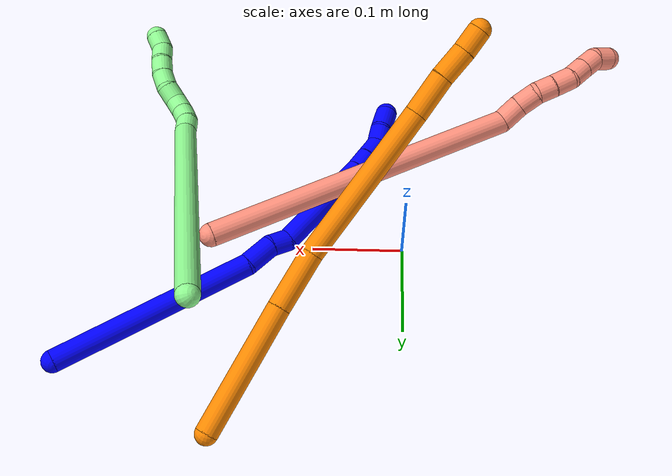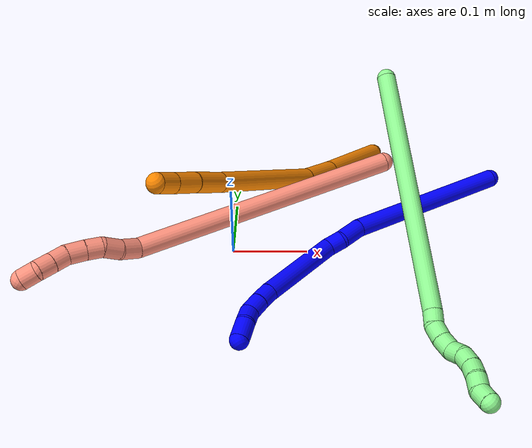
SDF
<sdf version="1.7">
 <world name="default">
  <model name="1">
   <static>0</static>
   <link name="1">
    <collision name="collision-cylinder-e_1_1_4">
     <pose>0.021679 -0.112838 -6.3e-05 1.57135 0.189811 0.189916</pose>
     <geometry><cylinder><radius>0.0125</radius><length>0.229803</length></cylinder></geometry>
     <surface>
      <friction><ode><mu>1.16</mu><mu2>1.16</mu2><slip1>0</slip1><slip2>0</slip2></ode></friction>
      <contact><ode><kp>1e+06</kp><kd>1</kd><max_vel>0</max_vel><min_depth>0.001</min_depth></ode></contact>
     </surface>
    </collision>
    <visual name="visual-cylinder-e_1_1_4">
     <pose>0.021679 -0.112838 -6.3e-05 1.57135 0.189811 0.189916</pose>
     <geometry><cylinder><radius>0.0125</radius><length>0.229803</length></cylinder></geometry>
     <material><ambient>0 0 1 1</ambient></material>
    </visual>
    <collision name="collision-cylinder-e_2_4_5">
     <pose>0.044781 -0.242319 0.003903 1.33334 0.08292 0.065259</pose>
     <geometry><cylinder><radius>0.0125</radius><length>0.034367</length></cylinder></geometry>
     <surface>
      <friction><ode><mu>1.16</mu><mu2>1.16</mu2><slip1>0</slip1><slip2>0</slip2></ode></friction>
      <contact><ode><kp>1e+06</kp><kd>1</kd><max_vel>0</max_vel><min_depth>0.001</min_depth></ode></contact>
     </surface>
    </collision>
    <visual name="visual-cylinder-e_2_4_5">
     <pose>0.044781 -0.242319 0.003903 1.33334 0.08292 0.065259</pose>
     <geometry><cylinder><radius>0.0125</radius><length>0.034367</length></cylinder></geometry>
     <material><ambient>0 0 1 1</ambient></material>
    </visual>
    <collision name="collision-cylinder-e_3_5_6">
     <pose>0.050586 -0.269112 0.008898 1.47577 0.405955 0.369977</pose>
     <geometry><cylinder><radius>0.0125</radius><length>0.022193</length></cylinder></geometry>
     <surface>
      <friction><ode><mu>1.16</mu><mu2>1.16</mu2><slip1>0</slip1><slip2>0</slip2></ode></friction>
      <contact><ode><kp>1e+06</kp><kd>1</kd><max_vel>0</max_vel><min_depth>0.001</min_depth></ode></contact>
     </surface>
    </collision>
    <visual name="visual-cylinder-e_3_5_6">
     <pose>0.050586 -0.269112 0.008898 1.47577 0.405955 0.369977</pose>
     <geometry><cylinder><radius>0.0125</radius><length>0.022193</length></cylinder></geometry>
     <material><ambient>0 0 1 1</ambient></material>
    </visual>
    <collision name="collision-cylinder-e_4_6_7">
     <pose>0.054472 -0.337641 0.027126 1.28334 -0.008139 -0.006081</pose>
     <geometry><cylinder><radius>0.0125</radius><length>0.121761</length></cylinder></geometry>
     <surface>
      <friction><ode><mu>1.16</mu><mu2>1.16</mu2><slip1>0</slip1><slip2>0</slip2></ode></friction>
      <contact><ode><kp>1e+06</kp><kd>1</kd><max_vel>0</max_vel><min_depth>0.001</min_depth></ode></contact>
     </surface>
    </collision>
    <visual name="visual-cylinder-e_4_6_7">
     <pose>0.054472 -0.337641 0.027126 1.28334 -0.008139 -0.006081</pose>
     <geometry><cylinder><radius>0.0125</radius><length>0.121761</length></cylinder></geometry>
     <material><ambient>0 0 1 1</ambient></material>
    </visual>
    <collision name="collision-cylinder-e_5_7_8">
     <pose>0.05374 -0.405962 0.048427 1.18461 -0.022061 -0.014845</pose>
     <geometry><cylinder><radius>0.0125</radius><length>0.021467</length></cylinder></geometry>
     <surface>
      <friction><ode><mu>1.16</mu><mu2>1.16</mu2><slip1>0</slip1><slip2>0</slip2></ode></friction>
      <contact><ode><kp>1e+06</kp><kd>1</kd><max_vel>0</max_vel><min_depth>0.001</min_depth></ode></contact>
     </surface>
    </collision>
    <visual name="visual-cylinder-e_5_7_8">
     <pose>0.05374 -0.405962 0.048427 1.18461 -0.022061 -0.014845</pose>
     <geometry><cylinder><radius>0.0125</radius><length>0.021467</length></cylinder></geometry>
     <material><ambient>0 0 1 1</ambient></material>
    </visual>
    <collision name="collision-cylinder-e_6_8_9">
     <pose>0.053762 -0.425925 0.057127 1.13572 0.023359 0.014902</pose>
     <geometry><cylinder><radius>0.0125</radius><length>0.022111</length></cylinder></geometry>
     <surface>
      <friction><ode><mu>1.16</mu><mu2>1.16</mu2><slip1>0</slip1><slip2>0</slip2></ode></friction>
      <contact><ode><kp>1e+06</kp><kd>1</kd><max_vel>0</max_vel><min_depth>0.001</min_depth></ode></contact>
     </surface>
    </collision>
    <visual name="visual-cylinder-e_6_8_9">
     <pose>0.053762 -0.425925 0.057127 1.13572 0.023359 0.014902</pose>
     <geometry><cylinder><radius>0.0125</radius><length>0.022111</length></cylinder></geometry>
     <material><ambient>0 0 1 1</ambient></material>
    </visual>
    <collision name="collision-cylinder-e_7_9_10">
     <pose>0.050789 -0.443834 0.068053 0.899263 -0.31035 -0.150703</pose>
     <geometry><cylinder><radius>0.0125</radius><length>0.021156</length></cylinder></geometry>
     <surface>
      <friction><ode><mu>1.16</mu><mu2>1.16</mu2><slip1>0</slip1><slip2>0</slip2></ode></friction>
      <contact><ode><kp>1e+06</kp><kd>1</kd><max_vel>0</max_vel><min_depth>0.001</min_depth></ode></contact>
     </surface>
    </collision>
    <visual name="visual-cylinder-e_7_9_10">
     <pose>0.050789 -0.443834 0.068053 0.899263 -0.31035 -0.150703</pose>
     <geometry><cylinder><radius>0.0125</radius><length>0.021156</length></cylinder></geometry>
     <material><ambient>0 0 1 1</ambient></material>
    </visual>
    <collision name="collision-cylinder-e_8_10_2">
     <pose>0.046684 -0.461536 0.08365 0.810818 -0.064497 -0.027689</pose>
     <geometry><cylinder><radius>0.0125</radius><length>0.027142</length></cylinder></geometry>
     <surface>
      <friction><ode><mu>1.16</mu><mu2>1.16</mu2><slip1>0</slip1><slip2>0</slip2></ode></friction>
      <contact><ode><kp>1e+06</kp><kd>1</kd><max_vel>0</max_vel><min_depth>0.001</min_depth></ode></contact>
     </surface>
    </collision>
    <visual name="visual-cylinder-e_8_10_2">
     <pose>0.046684 -0.461536 0.08365 0.810818 -0.064497 -0.027689</pose>
     <geometry><cylinder><radius>0.0125</radius><length>0.027142</length></cylinder></geometry>
     <material><ambient>0 0 1 1</ambient></material>
    </visual>
    <collision name="collision-sphere-2">
     <pose>0.045809 -0.471353 0.09298 0 -0 0</pose>
     <geometry><sphere><radius>0.0125</radius></sphere></geometry>
     <surface>
      <friction><ode><mu>1.16</mu><mu2>1.16</mu2><slip1>0</slip1><slip2>0</slip2></ode></friction>
      <contact><ode><kp>1e+06</kp><kd>1</kd><max_vel>0</max_vel><min_depth>0.001</min_depth></ode></contact>
     </surface>
    </collision>
    <visual name="visual-sphere-2">
     <pose>0.045809 -0.471353 0.09298 0 -0 0</pose>
     <geometry><sphere><radius>0.0125</radius></sphere></geometry>
     <material><ambient>0 0 1 1</ambient></material>
    </visual>
    <collision name="collision-sphere-10">
     <pose>0.047559 -0.451719 0.07432 0 -0 0</pose>
     <geometry><sphere><radius>0.0125</radius></sphere></geometry>
     <surface>
      <friction><ode><mu>1.16</mu><mu2>1.16</mu2><slip1>0</slip1><slip2>0</slip2></ode></friction>
      <contact><ode><kp>1e+06</kp><kd>1</kd><max_vel>0</max_vel><min_depth>0.001</min_depth></ode></contact>
     </surface>
    </collision>
    <visual name="visual-sphere-10">
     <pose>0.047559 -0.451719 0.07432 0 -0 0</pose>
     <geometry><sphere><radius>0.0125</radius></sphere></geometry>
     <material><ambient>0 0 1 1</ambient></material>
    </visual>
    <collision name="collision-sphere-9">
     <pose>0.05402 -0.435948 0.061786 0 -0 0</pose>
     <geometry><sphere><radius>0.0125</radius></sphere></geometry>
     <surface>
      <friction><ode><mu>1.16</mu><mu2>1.16</mu2><slip1>0</slip1><slip2>0</slip2></ode></friction>
      <contact><ode><kp>1e+06</kp><kd>1</kd><max_vel>0</max_vel><min_depth>0.001</min_depth></ode></contact>
     </surface>
    </collision>
    <visual name="visual-sphere-9">
     <pose>0.05402 -0.435948 0.061786 0 -0 0</pose>
     <geometry><sphere><radius>0.0125</radius></sphere></geometry>
     <material><ambient>0 0 1 1</ambient></material>
    </visual>
    <collision name="collision-sphere-4">
     <pose>0.043358 -0.225676 -0.000125 0 -0 0</pose>
     <geometry><sphere><radius>0.0125</radius></sphere></geometry>
     <surface>
      <friction><ode><mu>1.16</mu><mu2>1.16</mu2><slip1>0</slip1><slip2>0</slip2></ode></friction>
      <contact><ode><kp>1e+06</kp><kd>1</kd><max_vel>0</max_vel><min_depth>0.001</min_depth></ode></contact>
     </surface>
    </collision>
    <visual name="visual-sphere-4">
     <pose>0.043358 -0.225676 -0.000125 0 -0 0</pose>
     <geometry><sphere><radius>0.0125</radius></sphere></geometry>
     <material><ambient>0 0 1 1</ambient></material>
    </visual>
    <collision name="collision-sphere-1">
     <geometry><sphere><radius>0.0125</radius></sphere></geometry>
     <surface>
      <friction><ode><mu>1.16</mu><mu2>1.16</mu2><slip1>0</slip1><slip2>0</slip2></ode></friction>
      <contact><ode><kp>1e+06</kp><kd>1</kd><max_vel>0</max_vel><min_depth>0.001</min_depth></ode></contact>
     </surface>
    </collision>
    <visual name="visual-sphere-1">
     <geometry><sphere><radius>0.0125</radius></sphere></geometry>
     <material><ambient>0 0 1 1</ambient></material>
    </visual>
    <collision name="collision-sphere-8">
     <pose>0.053503 -0.415902 0.052469 0 -0 0</pose>
     <geometry><sphere><radius>0.0125</radius></sphere></geometry>
     <surface>
      <friction><ode><mu>1.16</mu><mu2>1.16</mu2><slip1>0</slip1><slip2>0</slip2></ode></friction>
      <contact><ode><kp>1e+06</kp><kd>1</kd><max_vel>0</max_vel><min_depth>0.001</min_depth></ode></contact>
     </surface>
    </collision>
    <visual name="visual-sphere-8">
     <pose>0.053503 -0.415902 0.052469 0 -0 0</pose>
     <geometry><sphere><radius>0.0125</radius></sphere></geometry>
     <material><ambient>0 0 1 1</ambient></material>
    </visual>
    <collision name="collision-sphere-5">
     <pose>0.046204 -0.258963 0.007931 0 -0 0</pose>
     <geometry><sphere><radius>0.0125</radius></sphere></geometry>
     <surface>
      <friction><ode><mu>1.16</mu><mu2>1.16</mu2><slip1>0</slip1><slip2>0</slip2></ode></friction>
      <contact><ode><kp>1e+06</kp><kd>1</kd><max_vel>0</max_vel><min_depth>0.001</min_depth></ode></contact>
     </surface>
    </collision>
    <visual name="visual-sphere-5">
     <pose>0.046204 -0.258963 0.007931 0 -0 0</pose>
     <geometry><sphere><radius>0.0125</radius></sphere></geometry>
     <material><ambient>0 0 1 1</ambient></material>
    </visual>
    <collision name="collision-sphere-6">
     <pose>0.054968 -0.27926 0.009866 0 -0 0</pose>
     <geometry><sphere><radius>0.0125</radius></sphere></geometry>
     <surface>
      <friction><ode><mu>1.16</mu><mu2>1.16</mu2><slip1>0</slip1><slip2>0</slip2></ode></friction>
      <contact><ode><kp>1e+06</kp><kd>1</kd><max_vel>0</max_vel><min_depth>0.001</min_depth></ode></contact>
     </surface>
    </collision>
    <visual name="visual-sphere-6">
     <pose>0.054968 -0.27926 0.009866 0 -0 0</pose>
     <geometry><sphere><radius>0.0125</radius></sphere></geometry>
     <material><ambient>0 0 1 1</ambient></material>
    </visual>
    <collision name="collision-sphere-7">
     <pose>0.053977 -0.396021 0.044385 0 -0 0</pose>
     <geometry><sphere><radius>0.0125</radius></sphere></geometry>
     <surface>
      <friction><ode><mu>1.16</mu><mu2>1.16</mu2><slip1>0</slip1><slip2>0</slip2></ode></friction>
      <contact><ode><kp>1e+06</kp><kd>1</kd><max_vel>0</max_vel><min_depth>0.001</min_depth></ode></contact>
     </surface>
    </collision>
    <visual name="visual-sphere-7">
     <pose>0.053977 -0.396021 0.044385 0 -0 0</pose>
     <geometry><sphere><radius>0.0125</radius></sphere></geometry>
     <material><ambient>0 0 1 1</ambient></material>
    </visual>
    <inertial>
     <pose>0.03792 -0.242783 0.019266 0 -0 0</pose>
     <mass>0.5</mass>
     <inertia>
      <ixx>0.001345</ixx>
      <ixy>0</ixy>
      <ixz>0</ixz>
      <iyy>0.000238</iyy>
      <iyz>0</iyz>
      <izz>0.000979</izz>
     </inertia>
    </inertial>
   </link>
   <pose>0.36615 0.15126 0.018551 -2.80856 1.04499 2.50344</pose>
  </model>
  <model name="13">
   <static>0</static>
   <link name="13">
    <collision name="collision-cylinder-e_1_1_4">
     <pose>-0.005382 -0.135787 -0.101993 2.21502 -0.03168 -0.0634</pose>
     <geometry><cylinder><radius>0.0125</radius><length>0.339822</length></cylinder></geometry>
     <surface>
      <friction><ode><mu>1.16</mu><mu2>1.16</mu2><slip1>0</slip1><slip2>0</slip2></ode></friction>
      <contact><ode><kp>1e+06</kp><kd>1</kd><max_vel>0</max_vel><min_depth>0.001</min_depth></ode></contact>
     </surface>
    </collision>
    <visual name="visual-cylinder-e_1_1_4">
     <pose>-0.005382 -0.135787 -0.101993 2.21502 -0.03168 -0.0634</pose>
     <geometry><cylinder><radius>0.0125</radius><length>0.339822</length></cylinder></geometry>
     <material><ambient>0.564706 0.984314 0.572549 1</ambient></material>
    </visual>
    <collision name="collision-cylinder-e_2_4_5">
     <pose>-0.010356 -0.280863 -0.207801 1.96056 0.040602 0.060562</pose>
     <geometry><cylinder><radius>0.0125</radius><length>0.020099</length></cylinder></geometry>
     <surface>
      <friction><ode><mu>1.16</mu><mu2>1.16</mu2><slip1>0</slip1><slip2>0</slip2></ode></friction>
      <contact><ode><kp>1e+06</kp><kd>1</kd><max_vel>0</max_vel><min_depth>0.001</min_depth></ode></contact>
     </surface>
    </collision>
    <visual name="visual-cylinder-e_2_4_5">
     <pose>-0.010356 -0.280863 -0.207801 1.96056 0.040602 0.060562</pose>
     <geometry><cylinder><radius>0.0125</radius><length>0.020099</length></cylinder></geometry>
     <material><ambient>0.564706 0.984314 0.572549 1</ambient></material>
    </visual>
    <collision name="collision-cylinder-e_3_5_6">
     <pose>-0.007004 -0.297577 -0.217637 2.25207 0.298755 0.611716</pose>
     <geometry><cylinder><radius>0.0125</radius><length>0.020004</length></cylinder></geometry>
     <surface>
      <friction><ode><mu>1.16</mu><mu2>1.16</mu2><slip1>0</slip1><slip2>0</slip2></ode></friction>
      <contact><ode><kp>1e+06</kp><kd>1</kd><max_vel>0</max_vel><min_depth>0.001</min_depth></ode></contact>
     </surface>
    </collision>
    <visual name="visual-cylinder-e_3_5_6">
     <pose>-0.007004 -0.297577 -0.217637 2.25207 0.298755 0.611716</pose>
     <geometry><cylinder><radius>0.0125</radius><length>0.020004</length></cylinder></geometry>
     <material><ambient>0.564706 0.984314 0.572549 1</ambient></material>
    </visual>
    <collision name="collision-cylinder-e_4_6_7">
     <pose>0.000676 -0.311855 -0.229222 2.25288 0.492368 0.971236</pose>
     <geometry><cylinder><radius>0.0125</radius><length>0.020037</length></cylinder></geometry>
     <surface>
      <friction><ode><mu>1.16</mu><mu2>1.16</mu2><slip1>0</slip1><slip2>0</slip2></ode></friction>
      <contact><ode><kp>1e+06</kp><kd>1</kd><max_vel>0</max_vel><min_depth>0.001</min_depth></ode></contact>
     </surface>
    </collision>
    <visual name="visual-cylinder-e_4_6_7">
     <pose>0.000676 -0.311855 -0.229222 2.25288 0.492368 0.971236</pose>
     <geometry><cylinder><radius>0.0125</radius><length>0.020037</length></cylinder></geometry>
     <material><ambient>0.564706 0.984314 0.572549 1</ambient></material>
    </visual>
    <collision name="collision-cylinder-e_5_7_8">
     <pose>0.013325 -0.324271 -0.23734 2.00088 0.912553 1.30625</pose>
     <geometry><cylinder><radius>0.0125</radius><length>0.020007</length></cylinder></geometry>
     <surface>
      <friction><ode><mu>1.16</mu><mu2>1.16</mu2><slip1>0</slip1><slip2>0</slip2></ode></friction>
      <contact><ode><kp>1e+06</kp><kd>1</kd><max_vel>0</max_vel><min_depth>0.001</min_depth></ode></contact>
     </surface>
    </collision>
    <visual name="visual-cylinder-e_5_7_8">
     <pose>0.013325 -0.324271 -0.23734 2.00088 0.912553 1.30625</pose>
     <geometry><cylinder><radius>0.0125</radius><length>0.020007</length></cylinder></geometry>
     <material><ambient>0.564706 0.984314 0.572549 1</ambient></material>
    </visual>
    <collision name="collision-cylinder-e_6_8_9">
     <pose>0.026389 -0.337711 -0.243307 1.97991 0.540242 0.79839</pose>
     <geometry><cylinder><radius>0.0125</radius><length>0.020025</length></cylinder></geometry>
     <surface>
      <friction><ode><mu>1.16</mu><mu2>1.16</mu2><slip1>0</slip1><slip2>0</slip2></ode></friction>
      <contact><ode><kp>1e+06</kp><kd>1</kd><max_vel>0</max_vel><min_depth>0.001</min_depth></ode></contact>
     </surface>
    </collision>
    <visual name="visual-cylinder-e_6_8_9">
     <pose>0.026389 -0.337711 -0.243307 1.97991 0.540242 0.79839</pose>
     <geometry><cylinder><radius>0.0125</radius><length>0.020025</length></cylinder></geometry>
     <material><ambient>0.564706 0.984314 0.572549 1</ambient></material>
    </visual>
    <collision name="collision-cylinder-e_7_9_10">
     <pose>0.035134 -0.35467 -0.248868 1.80278 0.367716 0.461634</pose>
     <geometry><cylinder><radius>0.0125</radius><length>0.020001</length></cylinder></geometry>
     <surface>
      <friction><ode><mu>1.16</mu><mu2>1.16</mu2><slip1>0</slip1><slip2>0</slip2></ode></friction>
      <contact><ode><kp>1e+06</kp><kd>1</kd><max_vel>0</max_vel><min_depth>0.001</min_depth></ode></contact>
     </surface>
    </collision>
    <visual name="visual-cylinder-e_7_9_10">
     <pose>0.035134 -0.35467 -0.248868 1.80278 0.367716 0.461634</pose>
     <geometry><cylinder><radius>0.0125</radius><length>0.020001</length></cylinder></geometry>
     <material><ambient>0.564706 0.984314 0.572549 1</ambient></material>
    </visual>
    <collision name="collision-cylinder-e_8_10_11">
     <pose>0.04063 -0.373068 -0.254113 1.89199 0.191305 0.264524</pose>
     <geometry><cylinder><radius>0.0125</radius><length>0.020001</length></cylinder></geometry>
     <surface>
      <friction><ode><mu>1.16</mu><mu2>1.16</mu2><slip1>0</slip1><slip2>0</slip2></ode></friction>
      <contact><ode><kp>1e+06</kp><kd>1</kd><max_vel>0</max_vel><min_depth>0.001</min_depth></ode></contact>
     </surface>
    </collision>
    <visual name="visual-cylinder-e_8_10_11">
     <pose>0.04063 -0.373068 -0.254113 1.89199 0.191305 0.264524</pose>
     <geometry><cylinder><radius>0.0125</radius><length>0.020001</length></cylinder></geometry>
     <material><ambient>0.564706 0.984314 0.572549 1</ambient></material>
    </visual>
    <collision name="collision-cylinder-e_9_11_2">
     <pose>0.048198 -0.389804 -0.2608 2.02121 0.602251 0.919528</pose>
     <geometry><cylinder><radius>0.0125</radius><length>0.020004</length></cylinder></geometry>
     <surface>
      <friction><ode><mu>1.16</mu><mu2>1.16</mu2><slip1>0</slip1><slip2>0</slip2></ode></friction>
      <contact><ode><kp>1e+06</kp><kd>1</kd><max_vel>0</max_vel><min_depth>0.001</min_depth></ode></contact>
     </surface>
    </collision>
    <visual name="visual-cylinder-e_9_11_2">
     <pose>0.048198 -0.389804 -0.2608 2.02121 0.602251 0.919528</pose>
     <geometry><cylinder><radius>0.0125</radius><length>0.020004</length></cylinder></geometry>
     <material><ambient>0.564706 0.984314 0.572549 1</ambient></material>
    </visual>
    <collision name="collision-sphere-2">
     <pose>0.053864 -0.397224 -0.264388 0 -0 0</pose>
     <geometry><sphere><radius>0.0125</radius></sphere></geometry>
     <surface>
      <friction><ode><mu>1.16</mu><mu2>1.16</mu2><slip1>0</slip1><slip2>0</slip2></ode></friction>
      <contact><ode><kp>1e+06</kp><kd>1</kd><max_vel>0</max_vel><min_depth>0.001</min_depth></ode></contact>
     </surface>
    </collision>
    <visual name="visual-sphere-2">
     <pose>0.053864 -0.397224 -0.264388 0 -0 0</pose>
     <geometry><sphere><radius>0.0125</radius></sphere></geometry>
     <material><ambient>0.564706 0.984314 0.572549 1</ambient></material>
    </visual>
    <collision name="collision-sphere-11">
     <pose>0.042532 -0.382384 -0.257212 0 -0 0</pose>
     <geometry><sphere><radius>0.0125</radius></sphere></geometry>
     <surface>
      <friction><ode><mu>1.16</mu><mu2>1.16</mu2><slip1>0</slip1><slip2>0</slip2></ode></friction>
      <contact><ode><kp>1e+06</kp><kd>1</kd><max_vel>0</max_vel><min_depth>0.001</min_depth></ode></contact>
     </surface>
    </collision>
    <visual name="visual-sphere-11">
     <pose>0.042532 -0.382384 -0.257212 0 -0 0</pose>
     <geometry><sphere><radius>0.0125</radius></sphere></geometry>
     <material><ambient>0.564706 0.984314 0.572549 1</ambient></material>
    </visual>
    <collision name="collision-sphere-10">
     <pose>0.038729 -0.363752 -0.251013 0 -0 0</pose>
     <geometry><sphere><radius>0.0125</radius></sphere></geometry>
     <surface>
      <friction><ode><mu>1.16</mu><mu2>1.16</mu2><slip1>0</slip1><slip2>0</slip2></ode></friction>
      <contact><ode><kp>1e+06</kp><kd>1</kd><max_vel>0</max_vel><min_depth>0.001</min_depth></ode></contact>
     </surface>
    </collision>
    <visual name="visual-sphere-10">
     <pose>0.038729 -0.363752 -0.251013 0 -0 0</pose>
     <geometry><sphere><radius>0.0125</radius></sphere></geometry>
     <material><ambient>0.564706 0.984314 0.572549 1</ambient></material>
    </visual>
    <collision name="collision-sphere-9">
     <pose>0.031539 -0.345589 -0.246722 0 -0 0</pose>
     <geometry><sphere><radius>0.0125</radius></sphere></geometry>
     <surface>
      <friction><ode><mu>1.16</mu><mu2>1.16</mu2><slip1>0</slip1><slip2>0</slip2></ode></friction>
      <contact><ode><kp>1e+06</kp><kd>1</kd><max_vel>0</max_vel><min_depth>0.001</min_depth></ode></contact>
     </surface>
    </collision>
    <visual name="visual-sphere-9">
     <pose>0.031539 -0.345589 -0.246722 0 -0 0</pose>
     <geometry><sphere><radius>0.0125</radius></sphere></geometry>
     <material><ambient>0.564706 0.984314 0.572549 1</ambient></material>
    </visual>
    <collision name="collision-sphere-4">
     <pose>-0.010764 -0.271575 -0.203986 0 -0 0</pose>
     <geometry><sphere><radius>0.0125</radius></sphere></geometry>
     <surface>
      <friction><ode><mu>1.16</mu><mu2>1.16</mu2><slip1>0</slip1><slip2>0</slip2></ode></friction>
      <contact><ode><kp>1e+06</kp><kd>1</kd><max_vel>0</max_vel><min_depth>0.001</min_depth></ode></contact>
     </surface>
    </collision>
    <visual name="visual-sphere-4">
     <pose>-0.010764 -0.271575 -0.203986 0 -0 0</pose>
     <geometry><sphere><radius>0.0125</radius></sphere></geometry>
     <material><ambient>0.564706 0.984314 0.572549 1</ambient></material>
    </visual>
    <collision name="collision-sphere-1">
     <geometry><sphere><radius>0.0125</radius></sphere></geometry>
     <surface>
      <friction><ode><mu>1.16</mu><mu2>1.16</mu2><slip1>0</slip1><slip2>0</slip2></ode></friction>
      <contact><ode><kp>1e+06</kp><kd>1</kd><max_vel>0</max_vel><min_depth>0.001</min_depth></ode></contact>
     </surface>
    </collision>
    <visual name="visual-sphere-1">
     <geometry><sphere><radius>0.0125</radius></sphere></geometry>
     <material><ambient>0.564706 0.984314 0.572549 1</ambient></material>
    </visual>
    <collision name="collision-sphere-8">
     <pose>0.021239 -0.329833 -0.239891 0 -0 0</pose>
     <geometry><sphere><radius>0.0125</radius></sphere></geometry>
     <surface>
      <friction><ode><mu>1.16</mu><mu2>1.16</mu2><slip1>0</slip1><slip2>0</slip2></ode></friction>
      <contact><ode><kp>1e+06</kp><kd>1</kd><max_vel>0</max_vel><min_depth>0.001</min_depth></ode></contact>
     </surface>
    </collision>
    <visual name="visual-sphere-8">
     <pose>0.021239 -0.329833 -0.239891 0 -0 0</pose>
     <geometry><sphere><radius>0.0125</radius></sphere></geometry>
     <material><ambient>0.564706 0.984314 0.572549 1</ambient></material>
    </visual>
    <collision name="collision-sphere-5">
     <pose>-0.009948 -0.290151 -0.211617 0 -0 0</pose>
     <geometry><sphere><radius>0.0125</radius></sphere></geometry>
     <surface>
      <friction><ode><mu>1.16</mu><mu2>1.16</mu2><slip1>0</slip1><slip2>0</slip2></ode></friction>
      <contact><ode><kp>1e+06</kp><kd>1</kd><max_vel>0</max_vel><min_depth>0.001</min_depth></ode></contact>
     </surface>
    </collision>
    <visual name="visual-sphere-5">
     <pose>-0.009948 -0.290151 -0.211617 0 -0 0</pose>
     <geometry><sphere><radius>0.0125</radius></sphere></geometry>
     <material><ambient>0.564706 0.984314 0.572549 1</ambient></material>
    </visual>
    <collision name="collision-sphere-6">
     <pose>-0.00406 -0.305002 -0.223657 0 -0 0</pose>
     <geometry><sphere><radius>0.0125</radius></sphere></geometry>
     <surface>
      <friction><ode><mu>1.16</mu><mu2>1.16</mu2><slip1>0</slip1><slip2>0</slip2></ode></friction>
      <contact><ode><kp>1e+06</kp><kd>1</kd><max_vel>0</max_vel><min_depth>0.001</min_depth></ode></contact>
     </surface>
    </collision>
    <visual name="visual-sphere-6">
     <pose>-0.00406 -0.305002 -0.223657 0 -0 0</pose>
     <geometry><sphere><radius>0.0125</radius></sphere></geometry>
     <material><ambient>0.564706 0.984314 0.572549 1</ambient></material>
    </visual>
    <collision name="collision-sphere-7">
     <pose>0.005412 -0.318708 -0.234788 0 -0 0</pose>
     <geometry><sphere><radius>0.0125</radius></sphere></geometry>
     <surface>
      <friction><ode><mu>1.16</mu><mu2>1.16</mu2><slip1>0</slip1><slip2>0</slip2></ode></friction>
      <contact><ode><kp>1e+06</kp><kd>1</kd><max_vel>0</max_vel><min_depth>0.001</min_depth></ode></contact>
     </surface>
    </collision>
    <visual name="visual-sphere-7">
     <pose>0.005412 -0.318708 -0.234788 0 -0 0</pose>
     <geometry><sphere><radius>0.0125</radius></sphere></geometry>
     <material><ambient>0.564706 0.984314 0.572549 1</ambient></material>
    </visual>
    <inertial>
     <pose>0.002222 -0.199187 -0.145361 0 -0 0</pose>
     <mass>0.5</mass>
     <inertia>
      <ixx>0.003085</ixx>
      <ixy>0</ixy>
      <ixz>0</ixz>
      <iyy>-0.002197</iyy>
      <iyz>0</iyz>
      <izz>0.002712</izz>
     </inertia>
    </inertial>
   </link>
   <pose>0.205884 0.155218 0.181232 0.001364 -0.74821 -0.288726</pose>
  </model>
  <model name="16">
   <static>0</static>
   <link name="16">
    <collision name="collision-cylinder-e_1_1_4">
     <pose>-0.105225 -0.049241 -0.128978 2.77689 -0.651252 -2.14186</pose>
     <geometry><cylinder><radius>0.0125</radius><length>0.347173</length></cylinder></geometry>
     <surface>
      <friction><ode><mu>1.16</mu><mu2>1.16</mu2><slip1>0</slip1><slip2>0</slip2></ode></friction>
      <contact><ode><kp>1e+06</kp><kd>1</kd><max_vel>0</max_vel><min_depth>0.001</min_depth></ode></contact>
     </surface>
    </collision>
    <visual name="visual-cylinder-e_1_1_4">
     <pose>-0.105225 -0.049241 -0.128978 2.77689 -0.651252 -2.14186</pose>
     <geometry><cylinder><radius>0.0125</radius><length>0.347173</length></cylinder></geometry>
     <material><ambient>1 0.576471 0.494118 1</ambient></material>
    </visual>
    <collision name="collision-cylinder-e_2_4_5">
     <pose>-0.219041 -0.106423 -0.263378 2.16987 -0.729161 -1.25158</pose>
     <geometry><cylinder><radius>0.0125</radius><length>0.02579</length></cylinder></geometry>
     <surface>
      <friction><ode><mu>1.16</mu><mu2>1.16</mu2><slip1>0</slip1><slip2>0</slip2></ode></friction>
      <contact><ode><kp>1e+06</kp><kd>1</kd><max_vel>0</max_vel><min_depth>0.001</min_depth></ode></contact>
     </surface>
    </collision>
    <visual name="visual-cylinder-e_2_4_5">
     <pose>-0.219041 -0.106423 -0.263378 2.16987 -0.729161 -1.25158</pose>
     <geometry><cylinder><radius>0.0125</radius><length>0.02579</length></cylinder></geometry>
     <material><ambient>1 0.576471 0.494118 1</ambient></material>
    </visual>
    <collision name="collision-cylinder-e_3_5_6">
     <pose>-0.23726 -0.120209 -0.272326 2.11367 -0.954077 -1.48261</pose>
     <geometry><cylinder><radius>0.0125</radius><length>0.023603</length></cylinder></geometry>
     <surface>
      <friction><ode><mu>1.16</mu><mu2>1.16</mu2><slip1>0</slip1><slip2>0</slip2></ode></friction>
      <contact><ode><kp>1e+06</kp><kd>1</kd><max_vel>0</max_vel><min_depth>0.001</min_depth></ode></contact>
     </surface>
    </collision>
    <visual name="visual-cylinder-e_3_5_6">
     <pose>-0.23726 -0.120209 -0.272326 2.11367 -0.954077 -1.48261</pose>
     <geometry><cylinder><radius>0.0125</radius><length>0.023603</length></cylinder></geometry>
     <material><ambient>1 0.576471 0.494118 1</ambient></material>
    </visual>
    <collision name="collision-cylinder-e_4_6_7">
     <pose>-0.254105 -0.129343 -0.282175 2.66181 -0.791702 -2.08252</pose>
     <geometry><cylinder><radius>0.0125</radius><length>0.020287</length></cylinder></geometry>
     <surface>
      <friction><ode><mu>1.16</mu><mu2>1.16</mu2><slip1>0</slip1><slip2>0</slip2></ode></friction>
      <contact><ode><kp>1e+06</kp><kd>1</kd><max_vel>0</max_vel><min_depth>0.001</min_depth></ode></contact>
     </surface>
    </collision>
    <visual name="visual-cylinder-e_4_6_7">
     <pose>-0.254105 -0.129343 -0.282175 2.66181 -0.791702 -2.08252</pose>
     <geometry><cylinder><radius>0.0125</radius><length>0.020287</length></cylinder></geometry>
     <material><ambient>1 0.576471 0.494118 1</ambient></material>
    </visual>
    <collision name="collision-cylinder-e_5_7_8">
     <pose>-0.268965 -0.136638 -0.296176 2.66081 -0.72305 -1.99131</pose>
     <geometry><cylinder><radius>0.0125</radius><length>0.023099</length></cylinder></geometry>
     <surface>
      <friction><ode><mu>1.16</mu><mu2>1.16</mu2><slip1>0</slip1><slip2>0</slip2></ode></friction>
      <contact><ode><kp>1e+06</kp><kd>1</kd><max_vel>0</max_vel><min_depth>0.001</min_depth></ode></contact>
     </surface>
    </collision>
    <visual name="visual-cylinder-e_5_7_8">
     <pose>-0.268965 -0.136638 -0.296176 2.66081 -0.72305 -1.99131</pose>
     <geometry><cylinder><radius>0.0125</radius><length>0.023099</length></cylinder></geometry>
     <material><ambient>1 0.576471 0.494118 1</ambient></material>
    </visual>
    <collision name="collision-cylinder-e_6_8_9">
     <pose>-0.280808 -0.145889 -0.311282 2.52666 -0.432712 -1.21094</pose>
     <geometry><cylinder><radius>0.0125</radius><length>0.020033</length></cylinder></geometry>
     <surface>
      <friction><ode><mu>1.16</mu><mu2>1.16</mu2><slip1>0</slip1><slip2>0</slip2></ode></friction>
      <contact><ode><kp>1e+06</kp><kd>1</kd><max_vel>0</max_vel><min_depth>0.001</min_depth></ode></contact>
     </surface>
    </collision>
    <visual name="visual-cylinder-e_6_8_9">
     <pose>-0.280808 -0.145889 -0.311282 2.52666 -0.432712 -1.21094</pose>
     <geometry><cylinder><radius>0.0125</radius><length>0.020033</length></cylinder></geometry>
     <material><ambient>1 0.576471 0.494118 1</ambient></material>
    </visual>
    <collision name="collision-cylinder-e_7_9_10">
     <pose>-0.289368 -0.156215 -0.32614 2.54196 -0.451093 -1.27702</pose>
     <geometry><cylinder><radius>0.0125</radius><length>0.020002</length></cylinder></geometry>
     <surface>
      <friction><ode><mu>1.16</mu><mu2>1.16</mu2><slip1>0</slip1><slip2>0</slip2></ode></friction>
      <contact><ode><kp>1e+06</kp><kd>1</kd><max_vel>0</max_vel><min_depth>0.001</min_depth></ode></contact>
     </surface>
    </collision>
    <visual name="visual-cylinder-e_7_9_10">
     <pose>-0.289368 -0.156215 -0.32614 2.54196 -0.451093 -1.27702</pose>
     <geometry><cylinder><radius>0.0125</radius><length>0.020002</length></cylinder></geometry>
     <material><ambient>1 0.576471 0.494118 1</ambient></material>
    </visual>
    <collision name="collision-cylinder-e_8_10_2">
     <pose>-0.298215 -0.161436 -0.342512 3.12572 -0.465084 -3.07457</pose>
     <geometry><cylinder><radius>0.0125</radius><length>0.020012</length></cylinder></geometry>
     <surface>
      <friction><ode><mu>1.16</mu><mu2>1.16</mu2><slip1>0</slip1><slip2>0</slip2></ode></friction>
      <contact><ode><kp>1e+06</kp><kd>1</kd><max_vel>0</max_vel><min_depth>0.001</min_depth></ode></contact>
     </surface>
    </collision>
    <visual name="visual-cylinder-e_8_10_2">
     <pose>-0.298215 -0.161436 -0.342512 3.12572 -0.465084 -3.07457</pose>
     <geometry><cylinder><radius>0.0125</radius><length>0.020012</length></cylinder></geometry>
     <material><ambient>1 0.576471 0.494118 1</ambient></material>
    </visual>
    <collision name="collision-sphere-2">
     <pose>-0.302703 -0.161578 -0.351454 0 -0 0</pose>
     <geometry><sphere><radius>0.0125</radius></sphere></geometry>
     <surface>
      <friction><ode><mu>1.16</mu><mu2>1.16</mu2><slip1>0</slip1><slip2>0</slip2></ode></friction>
      <contact><ode><kp>1e+06</kp><kd>1</kd><max_vel>0</max_vel><min_depth>0.001</min_depth></ode></contact>
     </surface>
    </collision>
    <visual name="visual-sphere-2">
     <pose>-0.302703 -0.161578 -0.351454 0 -0 0</pose>
     <geometry><sphere><radius>0.0125</radius></sphere></geometry>
     <material><ambient>1 0.576471 0.494118 1</ambient></material>
    </visual>
    <collision name="collision-sphere-10">
     <pose>-0.293728 -0.161294 -0.33357 0 -0 0</pose>
     <geometry><sphere><radius>0.0125</radius></sphere></geometry>
     <surface>
      <friction><ode><mu>1.16</mu><mu2>1.16</mu2><slip1>0</slip1><slip2>0</slip2></ode></friction>
      <contact><ode><kp>1e+06</kp><kd>1</kd><max_vel>0</max_vel><min_depth>0.001</min_depth></ode></contact>
     </surface>
    </collision>
    <visual name="visual-sphere-10">
     <pose>-0.293728 -0.161294 -0.33357 0 -0 0</pose>
     <geometry><sphere><radius>0.0125</radius></sphere></geometry>
     <material><ambient>1 0.576471 0.494118 1</ambient></material>
    </visual>
    <collision name="collision-sphere-9">
     <pose>-0.285008 -0.151135 -0.318709 0 -0 0</pose>
     <geometry><sphere><radius>0.0125</radius></sphere></geometry>
     <surface>
      <friction><ode><mu>1.16</mu><mu2>1.16</mu2><slip1>0</slip1><slip2>0</slip2></ode></friction>
      <contact><ode><kp>1e+06</kp><kd>1</kd><max_vel>0</max_vel><min_depth>0.001</min_depth></ode></contact>
     </surface>
    </collision>
    <visual name="visual-sphere-9">
     <pose>-0.285008 -0.151135 -0.318709 0 -0 0</pose>
     <geometry><sphere><radius>0.0125</radius></sphere></geometry>
     <material><ambient>1 0.576471 0.494118 1</ambient></material>
    </visual>
    <collision name="collision-sphere-4">
     <pose>-0.21045 -0.098482 -0.257956 0 -0 0</pose>
     <geometry><sphere><radius>0.0125</radius></sphere></geometry>
     <surface>
      <friction><ode><mu>1.16</mu><mu2>1.16</mu2><slip1>0</slip1><slip2>0</slip2></ode></friction>
      <contact><ode><kp>1e+06</kp><kd>1</kd><max_vel>0</max_vel><min_depth>0.001</min_depth></ode></contact>
     </surface>
    </collision>
    <visual name="visual-sphere-4">
     <pose>-0.21045 -0.098482 -0.257956 0 -0 0</pose>
     <geometry><sphere><radius>0.0125</radius></sphere></geometry>
     <material><ambient>1 0.576471 0.494118 1</ambient></material>
    </visual>
    <collision name="collision-sphere-1">
     <geometry><sphere><radius>0.0125</radius></sphere></geometry>
     <surface>
      <friction><ode><mu>1.16</mu><mu2>1.16</mu2><slip1>0</slip1><slip2>0</slip2></ode></friction>
      <contact><ode><kp>1e+06</kp><kd>1</kd><max_vel>0</max_vel><min_depth>0.001</min_depth></ode></contact>
     </surface>
    </collision>
    <visual name="visual-sphere-1">
     <geometry><sphere><radius>0.0125</radius></sphere></geometry>
     <material><ambient>1 0.576471 0.494118 1</ambient></material>
    </visual>
    <collision name="collision-sphere-8">
     <pose>-0.276607 -0.140643 -0.303854 0 -0 0</pose>
     <geometry><sphere><radius>0.0125</radius></sphere></geometry>
     <surface>
      <friction><ode><mu>1.16</mu><mu2>1.16</mu2><slip1>0</slip1><slip2>0</slip2></ode></friction>
      <contact><ode><kp>1e+06</kp><kd>1</kd><max_vel>0</max_vel><min_depth>0.001</min_depth></ode></contact>
     </surface>
    </collision>
    <visual name="visual-sphere-8">
     <pose>-0.276607 -0.140643 -0.303854 0 -0 0</pose>
     <geometry><sphere><radius>0.0125</radius></sphere></geometry>
     <material><ambient>1 0.576471 0.494118 1</ambient></material>
    </visual>
    <collision name="collision-sphere-5">
     <pose>-0.227632 -0.114365 -0.2688 0 -0 0</pose>
     <geometry><sphere><radius>0.0125</radius></sphere></geometry>
     <surface>
      <friction><ode><mu>1.16</mu><mu2>1.16</mu2><slip1>0</slip1><slip2>0</slip2></ode></friction>
      <contact><ode><kp>1e+06</kp><kd>1</kd><max_vel>0</max_vel><min_depth>0.001</min_depth></ode></contact>
     </surface>
    </collision>
    <visual name="visual-sphere-5">
     <pose>-0.227632 -0.114365 -0.2688 0 -0 0</pose>
     <geometry><sphere><radius>0.0125</radius></sphere></geometry>
     <material><ambient>1 0.576471 0.494118 1</ambient></material>
    </visual>
    <collision name="collision-sphere-6">
     <pose>-0.246888 -0.126054 -0.275853 0 -0 0</pose>
     <geometry><sphere><radius>0.0125</radius></sphere></geometry>
     <surface>
      <friction><ode><mu>1.16</mu><mu2>1.16</mu2><slip1>0</slip1><slip2>0</slip2></ode></friction>
      <contact><ode><kp>1e+06</kp><kd>1</kd><max_vel>0</max_vel><min_depth>0.001</min_depth></ode></contact>
     </surface>
    </collision>
    <visual name="visual-sphere-6">
     <pose>-0.246888 -0.126054 -0.275853 0 -0 0</pose>
     <geometry><sphere><radius>0.0125</radius></sphere></geometry>
     <material><ambient>1 0.576471 0.494118 1</ambient></material>
    </visual>
    <collision name="collision-sphere-7">
     <pose>-0.261323 -0.132633 -0.288498 0 -0 0</pose>
     <geometry><sphere><radius>0.0125</radius></sphere></geometry>
     <surface>
      <friction><ode><mu>1.16</mu><mu2>1.16</mu2><slip1>0</slip1><slip2>0</slip2></ode></friction>
      <contact><ode><kp>1e+06</kp><kd>1</kd><max_vel>0</max_vel><min_depth>0.001</min_depth></ode></contact>
     </surface>
    </collision>
    <visual name="visual-sphere-7">
     <pose>-0.261323 -0.132633 -0.288498 0 -0 0</pose>
     <geometry><sphere><radius>0.0125</radius></sphere></geometry>
     <material><ambient>1 0.576471 0.494118 1</ambient></material>
    </visual>
    <inertial>
     <pose>-0.15306 -0.075471 -0.180355 0 -0 0</pose>
     <mass>0.5</mass>
     <inertia><ixx>-0.003879</ixx><ixy>0</ixy><ixz>0</ixz><iyy>4.8e-05</iyy><iyz>0</iyz><izz>0.0031</izz></inertia>
    </inertial>
   </link>
   <pose>0.199502 0.050944 0.114038 -0.657505 0.528341 -0.256682</pose>
  </model>
  <model name="19">
   <static>0</static>
   <link name="19">
    <collision name="collision-cylinder-e_1_1_4">
     <pose>0.01285 -0.057118 0.04422 0.911995 0.17605 0.086517</pose>
     <geometry><cylinder><radius>0.0125</radius><length>0.146739</length></cylinder></geometry>
     <surface>
      <friction><ode><mu>1.16</mu><mu2>1.16</mu2><slip1>0</slip1><slip2>0</slip2></ode></friction>
      <contact><ode><kp>1e+06</kp><kd>1</kd><max_vel>0</max_vel><min_depth>0.001</min_depth></ode></contact>
     </surface>
    </collision>
    <visual name="visual-cylinder-e_1_1_4">
     <pose>0.01285 -0.057118 0.04422 0.911995 0.17605 0.086517</pose>
     <geometry><cylinder><radius>0.0125</radius><length>0.146739</length></cylinder></geometry>
     <material><ambient>0.996078 0.537255 0 1</ambient></material>
    </visual>
    <collision name="collision-cylinder-e_2_4_5">
     <pose>0.030499 -0.139461 0.108775 0.89231 0.147034 0.070427</pose>
     <geometry><cylinder><radius>0.0125</radius><length>0.065506</length></cylinder></geometry>
     <surface>
      <friction><ode><mu>1.16</mu><mu2>1.16</mu2><slip1>0</slip1><slip2>0</slip2></ode></friction>
      <contact><ode><kp>1e+06</kp><kd>1</kd><max_vel>0</max_vel><min_depth>0.001</min_depth></ode></contact>
     </surface>
    </collision>
    <visual name="visual-cylinder-e_2_4_5">
     <pose>0.030499 -0.139461 0.108775 0.89231 0.147034 0.070427</pose>
     <geometry><cylinder><radius>0.0125</radius><length>0.065506</length></cylinder></geometry>
     <material><ambient>0.996078 0.537255 0 1</ambient></material>
    </visual>
    <collision name="collision-cylinder-e_3_5_6">
     <pose>0.037645 -0.22817 0.192831 0.78354 0.026101 0.010784</pose>
     <geometry><cylinder><radius>0.0125</radius><length>0.17996</length></cylinder></geometry>
     <surface>
      <friction><ode><mu>1.16</mu><mu2>1.16</mu2><slip1>0</slip1><slip2>0</slip2></ode></friction>
      <contact><ode><kp>1e+06</kp><kd>1</kd><max_vel>0</max_vel><min_depth>0.001</min_depth></ode></contact>
     </surface>
    </collision>
    <visual name="visual-cylinder-e_3_5_6">
     <pose>0.037645 -0.22817 0.192831 0.78354 0.026101 0.010784</pose>
     <geometry><cylinder><radius>0.0125</radius><length>0.17996</length></cylinder></geometry>
     <material><ambient>0.996078 0.537255 0 1</ambient></material>
    </visual>
    <collision name="collision-cylinder-e_4_6_7">
     <pose>0.040957 -0.307369 0.273504 0.747523 0.041675 0.016347</pose>
     <geometry><cylinder><radius>0.0125</radius><length>0.046266</length></cylinder></geometry>
     <surface>
      <friction><ode><mu>1.16</mu><mu2>1.16</mu2><slip1>0</slip1><slip2>0</slip2></ode></friction>
      <contact><ode><kp>1e+06</kp><kd>1</kd><max_vel>0</max_vel><min_depth>0.001</min_depth></ode></contact>
     </surface>
    </collision>
    <visual name="visual-cylinder-e_4_6_7">
     <pose>0.040957 -0.307369 0.273504 0.747523 0.041675 0.016347</pose>
     <geometry><cylinder><radius>0.0125</radius><length>0.046266</length></cylinder></geometry>
     <material><ambient>0.996078 0.537255 0 1</ambient></material>
    </visual>
    <collision name="collision-cylinder-e_5_7_8">
     <pose>0.041226 -0.335417 0.302744 0.787242 -0.039886 -0.016566</pose>
     <geometry><cylinder><radius>0.0125</radius><length>0.034853</length></cylinder></geometry>
     <surface>
      <friction><ode><mu>1.16</mu><mu2>1.16</mu2><slip1>0</slip1><slip2>0</slip2></ode></friction>
      <contact><ode><kp>1e+06</kp><kd>1</kd><max_vel>0</max_vel><min_depth>0.001</min_depth></ode></contact>
     </surface>
    </collision>
    <visual name="visual-cylinder-e_5_7_8">
     <pose>0.041226 -0.335417 0.302744 0.787242 -0.039886 -0.016566</pose>
     <geometry><cylinder><radius>0.0125</radius><length>0.034853</length></cylinder></geometry>
     <material><ambient>0.996078 0.537255 0 1</ambient></material>
    </visual>
    <collision name="collision-cylinder-e_6_8_2">
     <pose>0.04095 -0.356836 0.324791 0.74972 0.031421 0.012364</pose>
     <geometry><cylinder><radius>0.0125</radius><length>0.026676</length></cylinder></geometry>
     <surface>
      <friction><ode><mu>1.16</mu><mu2>1.16</mu2><slip1>0</slip1><slip2>0</slip2></ode></friction>
      <contact><ode><kp>1e+06</kp><kd>1</kd><max_vel>0</max_vel><min_depth>0.001</min_depth></ode></contact>
     </surface>
    </collision>
    <visual name="visual-cylinder-e_6_8_2">
     <pose>0.04095 -0.356836 0.324791 0.74972 0.031421 0.012364</pose>
     <geometry><cylinder><radius>0.0125</radius><length>0.026676</length></cylinder></geometry>
     <material><ambient>0.996078 0.537255 0 1</ambient></material>
    </visual>
    <collision name="collision-sphere-2">
     <pose>0.041369 -0.365921 0.334548 0 -0 0</pose>
     <geometry><sphere><radius>0.0125</radius></sphere></geometry>
     <surface>
      <friction><ode><mu>1.16</mu><mu2>1.16</mu2><slip1>0</slip1><slip2>0</slip2></ode></friction>
      <contact><ode><kp>1e+06</kp><kd>1</kd><max_vel>0</max_vel><min_depth>0.001</min_depth></ode></contact>
     </surface>
    </collision>
    <visual name="visual-sphere-2">
     <pose>0.041369 -0.365921 0.334548 0 -0 0</pose>
     <geometry><sphere><radius>0.0125</radius></sphere></geometry>
     <material><ambient>0.996078 0.537255 0 1</ambient></material>
    </visual>
    <collision name="collision-sphere-4">
     <pose>0.0257 -0.114237 0.088441 0 -0 0</pose>
     <geometry><sphere><radius>0.0125</radius></sphere></geometry>
     <surface>
      <friction><ode><mu>1.16</mu><mu2>1.16</mu2><slip1>0</slip1><slip2>0</slip2></ode></friction>
      <contact><ode><kp>1e+06</kp><kd>1</kd><max_vel>0</max_vel><min_depth>0.001</min_depth></ode></contact>
     </surface>
    </collision>
    <visual name="visual-sphere-4">
     <pose>0.0257 -0.114237 0.088441 0 -0 0</pose>
     <geometry><sphere><radius>0.0125</radius></sphere></geometry>
     <material><ambient>0.996078 0.537255 0 1</ambient></material>
    </visual>
    <collision name="collision-sphere-1">
     <geometry><sphere><radius>0.0125</radius></sphere></geometry>
     <surface>
      <friction><ode><mu>1.16</mu><mu2>1.16</mu2><slip1>0</slip1><slip2>0</slip2></ode></friction>
      <contact><ode><kp>1e+06</kp><kd>1</kd><max_vel>0</max_vel><min_depth>0.001</min_depth></ode></contact>
     </surface>
    </collision>
    <visual name="visual-sphere-1">
     <geometry><sphere><radius>0.0125</radius></sphere></geometry>
     <material><ambient>0.996078 0.537255 0 1</ambient></material>
    </visual>
    <collision name="collision-sphere-8">
     <pose>0.040531 -0.347752 0.315034 0 -0 0</pose>
     <geometry><sphere><radius>0.0125</radius></sphere></geometry>
     <surface>
      <friction><ode><mu>1.16</mu><mu2>1.16</mu2><slip1>0</slip1><slip2>0</slip2></ode></friction>
      <contact><ode><kp>1e+06</kp><kd>1</kd><max_vel>0</max_vel><min_depth>0.001</min_depth></ode></contact>
     </surface>
    </collision>
    <visual name="visual-sphere-8">
     <pose>0.040531 -0.347752 0.315034 0 -0 0</pose>
     <geometry><sphere><radius>0.0125</radius></sphere></geometry>
     <material><ambient>0.996078 0.537255 0 1</ambient></material>
    </visual>
    <collision name="collision-sphere-5">
     <pose>0.035297 -0.164684 0.129109 0 -0 0</pose>
     <geometry><sphere><radius>0.0125</radius></sphere></geometry>
     <surface>
      <friction><ode><mu>1.16</mu><mu2>1.16</mu2><slip1>0</slip1><slip2>0</slip2></ode></friction>
      <contact><ode><kp>1e+06</kp><kd>1</kd><max_vel>0</max_vel><min_depth>0.001</min_depth></ode></contact>
     </surface>
    </collision>
    <visual name="visual-sphere-5">
     <pose>0.035297 -0.164684 0.129109 0 -0 0</pose>
     <geometry><sphere><radius>0.0125</radius></sphere></geometry>
     <material><ambient>0.996078 0.537255 0 1</ambient></material>
    </visual>
    <collision name="collision-sphere-6">
     <pose>0.039994 -0.291656 0.256553 0 -0 0</pose>
     <geometry><sphere><radius>0.0125</radius></sphere></geometry>
     <surface>
      <friction><ode><mu>1.16</mu><mu2>1.16</mu2><slip1>0</slip1><slip2>0</slip2></ode></friction>
      <contact><ode><kp>1e+06</kp><kd>1</kd><max_vel>0</max_vel><min_depth>0.001</min_depth></ode></contact>
     </surface>
    </collision>
    <visual name="visual-sphere-6">
     <pose>0.039994 -0.291656 0.256553 0 -0 0</pose>
     <geometry><sphere><radius>0.0125</radius></sphere></geometry>
     <material><ambient>0.996078 0.537255 0 1</ambient></material>
    </visual>
    <collision name="collision-sphere-7">
     <pose>0.041921 -0.323081 0.290454 0 -0 0</pose>
     <geometry><sphere><radius>0.0125</radius></sphere></geometry>
     <surface>
      <friction><ode><mu>1.16</mu><mu2>1.16</mu2><slip1>0</slip1><slip2>0</slip2></ode></friction>
      <contact><ode><kp>1e+06</kp><kd>1</kd><max_vel>0</max_vel><min_depth>0.001</min_depth></ode></contact>
     </surface>
    </collision>
    <visual name="visual-sphere-7">
     <pose>0.041921 -0.323081 0.290454 0 -0 0</pose>
     <geometry><sphere><radius>0.0125</radius></sphere></geometry>
     <material><ambient>0.996078 0.537255 0 1</ambient></material>
    </visual>
    <inertial>
     <pose>0.030165 -0.188017 0.160372 0 -0 0</pose>
     <mass>0.5</mass>
     <inertia>
      <ixx>0.000833</ixx>
      <ixy>0</ixy>
      <ixz>0</ixz>
      <iyy>0.000547</iyy>
      <iyz>0</iyz>
      <izz>0.000551</izz>
     </inertia>
    </inertial>
   </link>
   <pose>0.199833 0.224894 0.012343 0.331256 -0.138083 -0.667761</pose>
  </model>
 </world>
</sdf>
